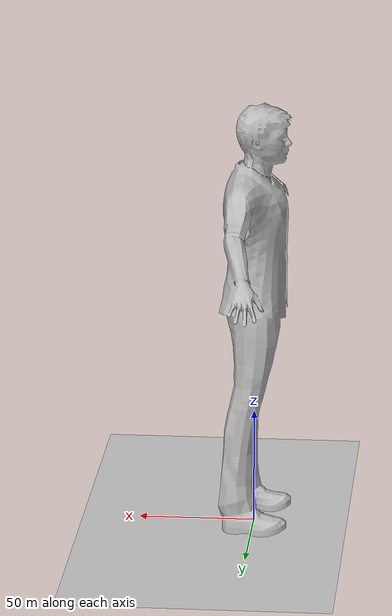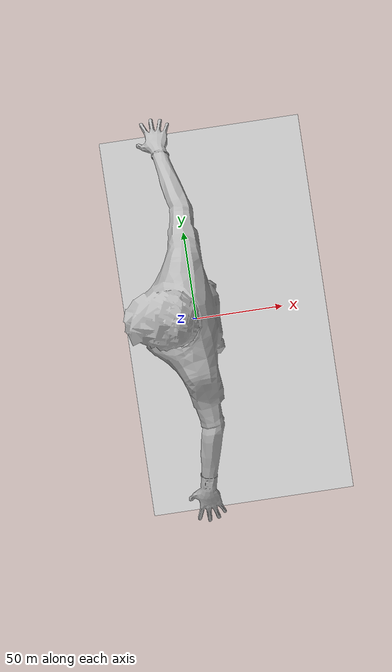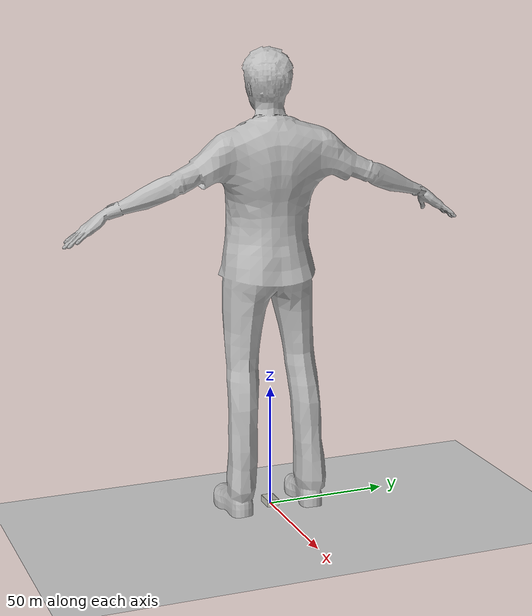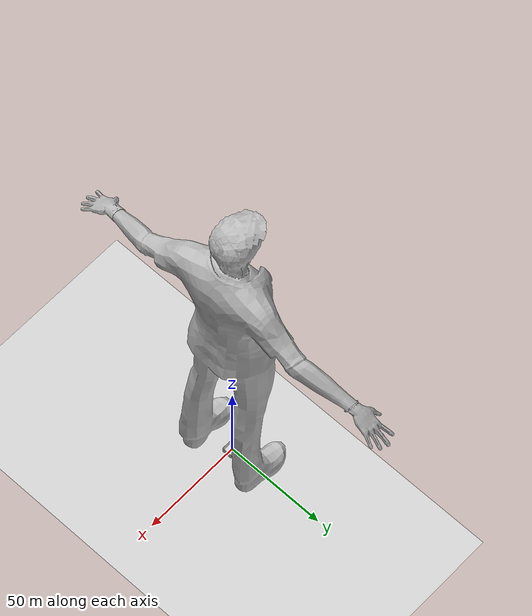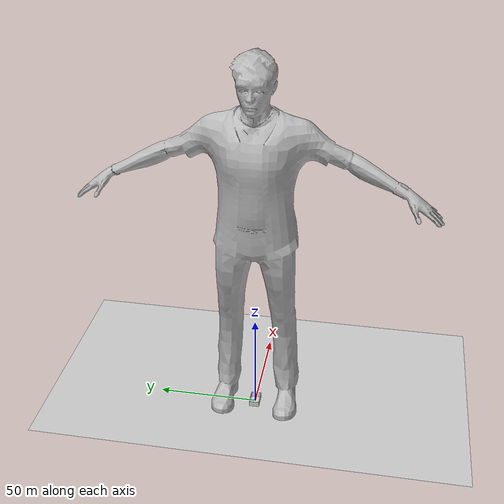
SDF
<sdf version="1.4">
 <world name="lwr_kinect_room">
  <include><uri>model://ground_plane</uri></include>
  <include><uri>model://sun</uri></include>
  <include><uri>model://Cage</uri><name>cage</name><pose>-3 0 0 0 0 0</pose></include>
  <include><name>MovingHuman</name><uri>model://MovingHuman</uri><pose>1.3 -0.44 0 0 0 -1.5708</pose></include>
 </world>
</sdf>

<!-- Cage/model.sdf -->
<sdf version='1.4'>
  <model name='Cage'>
    <link name='Wall_1'>
      <collision name='Wall_1_Collision'>
        <pose>-1 0 1 0 0 0</pose>
        <geometry>
          <box>
            <size>0.1 5 3</size>
          </box>
        </geometry>
      </collision>
      <visual name='Wall_1_Visual'>
        <pose>-1 0 1 0 0 0</pose>
        <geometry>
          <box>
            <size>0.1 5 3</size>
          </box>
        </geometry>
        <material>
          <script>
            <uri>file://media/materials/scripts/gazebo.material</uri>
            <name>Gazebo/PaintedWall</name>
          </script>
        </material>
      </visual>
    </link>
    <link name='Wall_2'>
      <collision name='Wall_2_Collision'>
        <pose>2.75 2.5 1 0 0 0</pose>
        <geometry>
          <box>
            <size>7.5 0.1 3</size>
          </box>
        </geometry>
      </collision>
      <visual name='Wall_2_Visual'>
        <pose>2.75 2.5 1 0 0 0</pose>
        <geometry>
          <box>
            <size>7.5 0.1 3</size>
          </box>
        </geometry>
        <material>
          <script>
            <uri>file://media/materials/scripts/gazebo.material</uri>
            <name>Gazebo/PaintedWall</name>
          </script>
        </material>
      </visual>
    </link>
    <link name='Wall_3'>
      <collision name='Wall_3_Collision'>
        <pose>6.5 0 1 0 0 0</pose>
        <geometry>
          <box>
            <size>0.1 5 3</size>
          </box>
        </geometry>
      </collision>
      <visual name='Wall_3_Visual'>
        <pose>6.5 0 1 0 0 0</pose>
        <geometry>
          <box>
            <size>0.1 5 3</size>
          </box>
        </geometry>
        <material>
          <script>
            <uri>file://media/materials/scripts/gazebo.material</uri>
            <name>Gazebo/PaintedWall</name>
          </script>
        </material>
      </visual>
    </link>
        <link name='Wall_4'>
      <collision name='Wall_4_Collision'>
        <pose>2.75 -2.5 1 0 0 0</pose>
        <geometry>
          <box>
            <size>7.5 0.1 3</size>
          </box>
        </geometry>
      </collision>
      <visual name='Wall_2_Visual'>
        <pose>2.75 -2.5 1 0 0 0</pose>
        <geometry>
          <box>
            <size>7.5 0.1 3</size>
          </box>
        </geometry>
        <material>
          <script>
            <uri>file://media/materials/scripts/gazebo.material</uri>
            <name>Gazebo/PaintedWall</name>
          </script>
        </material>
      </visual>
    </link>
    <static>1</static>
  </model>
</sdf>

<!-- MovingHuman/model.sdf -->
<sdf version="1.4">
  <model name="moving_human">
    <link name="human_link">
      <gravity>false</gravity>
      <inertial>
        <mass> 50 </mass>
        <inertia>
	  <ixx>50</ixx>
	  <ixy>0</ixy>
	  <ixz>0</ixz>
	  <iyy>50</iyy>
	  <izz>50</izz>
        </inertia>
      </inertial>
      <visual name="visual">
        <pose>0 0 0.0 0 0 0 </pose>
        <geometry>
 	  <mesh>
            <uri> model://MovingHuman/meshes/Man_Mp_Iphone.dae</uri>
	  </mesh>
        </geometry>
      </visual>
    </link>
    <plugin name="object_controller" filename="libgazebo_ros_planar_move.so">
      <commandTopic>cmd_vel</commandTopic>
      <odometryTopic>world</odometryTopic>
      <odometryFrame>world</odometryFrame>
      <odometryRate>30.0</odometryRate>
      <robotBaseFrame>human_link</robotBaseFrame>
    </plugin>
  </model>
</sdf>
